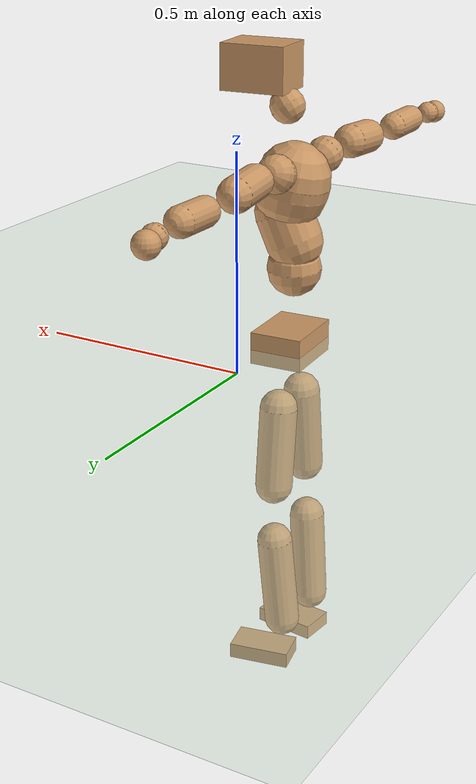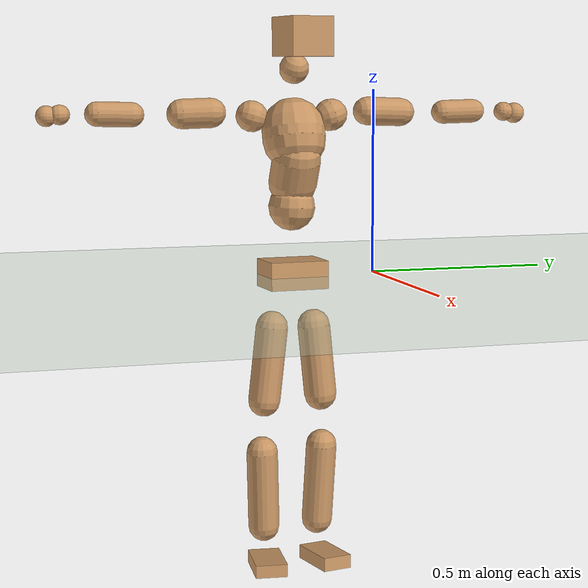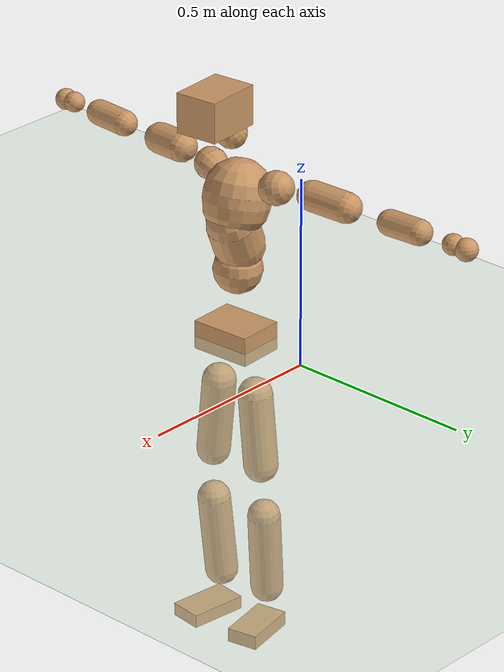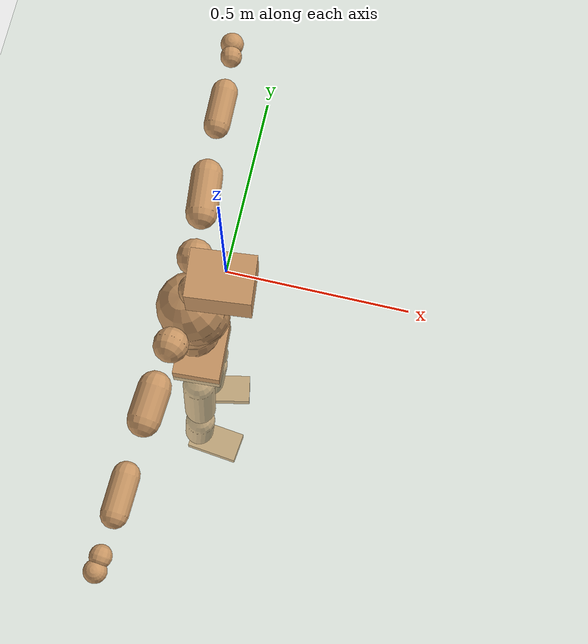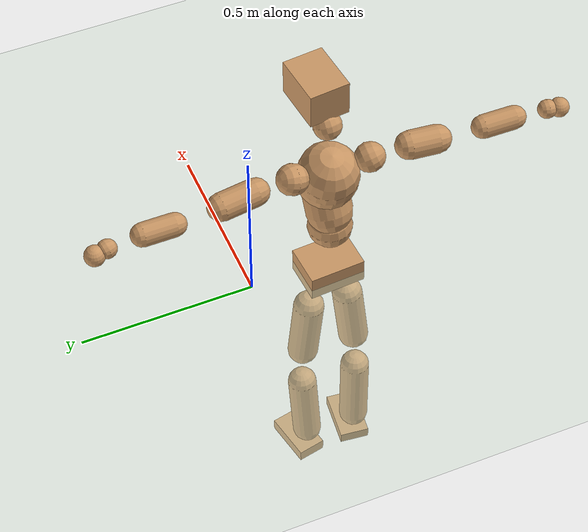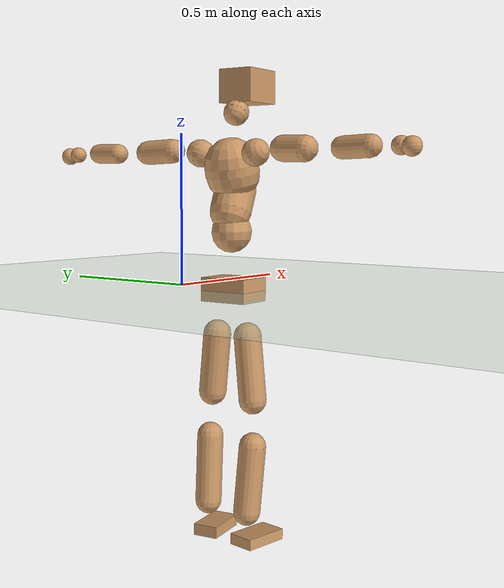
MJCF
<mujoco model="humanoid">
  <compiler coordinate="local" angle="radian"/>
  <default>
    <joint damping="0.0" armature="0.01" stiffness="0.0" limited="true"/>
    <geom conaffinity="1" condim="3" contype="7" margin="0.001" rgba="0.8 0.6 .4 1"/>
  </default>
  <asset>
    <texture type="skybox" builtin="gradient" rgb1=".4 .5 .6" rgb2="0 0 0" width="100" height="100"/>
    <texture builtin="flat" height="1278" mark="cross" markrgb="1 1 1" name="texgeom" random="0.01" rgb1="0.8 0.6 0.4" rgb2="0.8 0.6 0.4" type="cube" width="127"/>
    <texture builtin="checker" height="100" name="texplane" rgb1="0 0 0" rgb2="0.8 0.8 0.8" type="2d" width="100"/>
    <material name="MatPlane" reflectance="0.5" shininess="1" specular="1" texrepeat="60 60" texture="texplane"/>
    <material name="geom" texture="texgeom" texuniform="true"/>
  </asset>
  <worldbody>
    <light cutoff="100" diffuse="1 1 1" dir="-0 0 -1.3" directional="true" exponent="1" pos="0 0 1.3" specular=".1 .1 .1"/>
    <geom conaffinity="1" condim="3" name="floor" pos="0 0 0" rgba="0.8 0.9 0.8 1" size="100 100 .2" type="plane" material="MatPlane"/>
    <body name="Pelvis" pos="-0.0053 -0.2268 0.0142">
      <freejoint name="Pelvis"/>
      <geom type="box" contype="1" conaffinity="1" density="5359.374787" pos="-0.0054 -0.0003 -0.0117" size="0.0625 0.0815 0.0382" quat="0.9996 0.0000 0.0000 0.0271" name="Pelvis"/>
      <body name="L_Hip" pos="-0.0106 0.0538 -0.0844">
        <joint name="L_Hip_x" type="hinge" pos="0 0 0" axis="1 0 0" stiffness="1600" damping="160" armature="0.02" range="-180.0000 180.0000"/>
        <joint name="L_Hip_y" type="hinge" pos="0 0 0" axis="0 1 0" stiffness="1600" damping="160" armature="0.02" range="-180.0000 180.0000"/>
        <joint name="L_Hip_z" type="hinge" pos="0 0 0" axis="0 0 1" stiffness="1600" damping="160" armature="0.02" range="-180.0000 180.0000"/>
        <geom type="capsule" contype="1" conaffinity="1" density="2040.816327" size="0.0447" fromto="0.0001 0.0073 -0.0744 0.0004 0.0265 -0.2684" name="L_Hip"/>
        <body name="L_Knee" pos="0.0005 0.0338 -0.3427">
          <joint name="L_Knee_x" type="hinge" pos="0 0 0" axis="1 0 0" stiffness="1600" damping="160" armature="0.02" range="-180.0000 180.0000"/>
          <joint name="L_Knee_y" type="hinge" pos="0 0 0" axis="0 1 0" stiffness="1600" damping="160" armature="0.02" range="-180.0000 180.0000"/>
          <joint name="L_Knee_z" type="hinge" pos="0 0 0" axis="0 0 1" stiffness="1600" damping="160" armature="0.02" range="-180.0000 180.0000"/>
          <geom type="capsule" contype="1" conaffinity="1" density="1234.567901" size="0.0425" fromto="-0.0063 -0.0023 -0.0722 -0.0252 -0.0094 -0.2894" name="L_Knee"/>
          <body name="L_Ankle" pos="-0.0314 -0.0117 -0.3616">
            <joint name="L_Ankle_x" type="hinge" pos="0 0 0" axis="1 0 0" stiffness="1600" damping="160" armature="0.02" range="-180.0000 180.0000"/>
            <joint name="L_Ankle_y" type="hinge" pos="0 0 0" axis="0 1 0" stiffness="1600" damping="160" armature="0.02" range="-180.0000 180.0000"/>
            <joint name="L_Ankle_z" type="hinge" pos="0 0 0" axis="0 0 1" stiffness="1600" damping="160" armature="0.02" range="-180.0000 180.0000"/>
            <geom type="box" contype="1" conaffinity="1" density="999.999956" pos="0.0538 0.0107 -0.0265" size="0.0738 0.0413 0.0189" quat="0.9952 0.0000 0.0000 0.0983" name="L_Ankle"/>
            <body name="L_Toe" pos="0.1076 0.0215 -0.0531">
              <joint name="L_Toe_x" type="hinge" pos="0 0 0" axis="1 0 0" stiffness="1000" damping="100" armature="0.02" range="-180.0000 180.0000"/>
              <joint name="L_Toe_y" type="hinge" pos="0 0 0" axis="0 1 0" stiffness="1000" damping="100" armature="0.02" range="-180.0000 180.0000"/>
              <joint name="L_Toe_z" type="hinge" pos="0 0 0" axis="0 0 1" stiffness="1000" damping="100" armature="0.02" range="-180.0000 180.0000"/>
              <geom type="box" contype="1" conaffinity="1" density="7966021.697165" pos="0.0000 0.0000 0.0281" size="0.0008 0.0021 0.001" quat="0.9944 0.0000 0.0000 0.1053" name="L_Toe"/>
            </body>
          </body>
        </body>
      </body>
      <body name="R_Hip" pos="-0.0066 -0.0516 -0.0842">
        <joint name="R_Hip_x" type="hinge" pos="0 0 0" axis="1 0 0" stiffness="1600" damping="160" armature="0.02" range="-180.0000 180.0000"/>
        <joint name="R_Hip_y" type="hinge" pos="0 0 0" axis="0 1 0" stiffness="1600" damping="160" armature="0.02" range="-180.0000 180.0000"/>
        <joint name="R_Hip_z" type="hinge" pos="0 0 0" axis="0 0 1" stiffness="1600" damping="160" armature="0.02" range="-180.0000 180.0000"/>
        <geom type="capsule" contype="1" conaffinity="1" density="2040.816327" size="0.0441" fromto="-0.0004 -0.0081 -0.0736 -0.0014 -0.0304 -0.2778" name="R_Hip"/>
        <body name="R_Knee" pos="-0.0017 -0.0385 -0.3514">
          <joint name="R_Knee_x" type="hinge" pos="0 0 0" axis="1 0 0" stiffness="1600" damping="160" armature="0.02" range="-180.0000 180.0000"/>
          <joint name="R_Knee_y" type="hinge" pos="0 0 0" axis="0 1 0" stiffness="1600" damping="160" armature="0.02" range="-180.0000 180.0000"/>
          <joint name="R_Knee_z" type="hinge" pos="0 0 0" axis="0 0 1" stiffness="1600" damping="160" armature="0.02" range="-180.0000 180.0000"/>
          <geom type="capsule" contype="1" conaffinity="1" density="1234.567901" size="0.0431" fromto="-0.0058 0.0030 -0.0728 -0.0231 0.0119 -0.2883" name="R_Knee"/>
          <body name="R_Ankle" pos="-0.029 0.0149 -0.3612">
            <joint name="R_Ankle_x" type="hinge" pos="0 0 0" axis="1 0 0" stiffness="1600" damping="160" armature="0.02" range="-180.0000 180.0000"/>
            <joint name="R_Ankle_y" type="hinge" pos="0 0 0" axis="0 1 0" stiffness="1600" damping="160" armature="0.02" range="-180.0000 180.0000"/>
            <joint name="R_Ankle_z" type="hinge" pos="0 0 0" axis="0 0 1" stiffness="1600" damping="160" armature="0.02" range="-180.0000 180.0000"/>
            <geom type="box" contype="1" conaffinity="1" density="999.99993" pos="0.0553 -0.0064 -0.0212" size="0.0766 0.044 0.0175" quat="0.9983 0.0000 0.0000 -0.0577" name="R_Ankle"/>
            <body name="R_Toe" pos="0.1105 -0.0128 -0.0424">
              <joint name="R_Toe_x" type="hinge" pos="0 0 0" axis="1 0 0" stiffness="1000" damping="100" armature="0.02" range="-180.0000 180.0000"/>
              <joint name="R_Toe_y" type="hinge" pos="0 0 0" axis="0 1 0" stiffness="1000" damping="100" armature="0.02" range="-180.0000 180.0000"/>
              <joint name="R_Toe_z" type="hinge" pos="0 0 0" axis="0 0 1" stiffness="1000" damping="100" armature="0.02" range="-180.0000 180.0000"/>
              <geom type="box" contype="1" conaffinity="1" density="8304630.065237" pos="0.0000 0.0000 0.0251" size="0.0008 0.0021 0.0011" quat="0.9989 0.0000 0.0000 -0.0479" name="R_Toe"/>
            </body>
          </body>
        </body>
      </body>
      <body name="Torso" pos="-0.015 -0.0039 0.0983">
        <joint name="Torso_x" type="hinge" pos="0 0 0" axis="1 0 0" stiffness="2000" damping="200" armature="0.02" range="-180.0000 180.0000"/>
        <joint name="Torso_y" type="hinge" pos="0 0 0" axis="0 1 0" stiffness="2000" damping="200" armature="0.02" range="-180.0000 180.0000"/>
        <joint name="Torso_z" type="hinge" pos="0 0 0" axis="0 0 1" stiffness="2000" damping="200" armature="0.02" range="-180.0000 180.0000"/>
        <geom type="capsule" contype="1" conaffinity="1" density="2040.816327" size="0.0638" fromto="0.0012 0.0036 0.0708 0.0012 0.0037 0.0728" name="Torso"/>
        <body name="Spine" pos="0.0024 0.0072 0.1435">
          <joint name="Spine_x" type="hinge" pos="0 0 0" axis="1 0 0" stiffness="2000" damping="200" armature="0.02" range="-180.0000 180.0000"/>
          <joint name="Spine_y" type="hinge" pos="0 0 0" axis="0 1 0" stiffness="2000" damping="200" armature="0.02" range="-180.0000 180.0000"/>
          <joint name="Spine_z" type="hinge" pos="0 0 0" axis="0 0 1" stiffness="2000" damping="200" armature="0.02" range="-180.0000 180.0000"/>
          <geom type="capsule" contype="1" conaffinity="1" density="2040.816327" size="0.0661" fromto="0.0258 0.0026 0.0608 -0.0029 -0.0003 -0.0068" name="Spine"/>
          <body name="Chest" pos="0.0229 0.0023 0.054">
            <joint name="Chest_x" type="hinge" pos="0 0 0" axis="1 0 0" stiffness="2000" damping="200" armature="0.02" range="-180.0000 180.0000"/>
            <joint name="Chest_y" type="hinge" pos="0 0 0" axis="0 1 0" stiffness="2000" damping="200" armature="0.02" range="-180.0000 180.0000"/>
            <joint name="Chest_z" type="hinge" pos="0 0 0" axis="0 0 1" stiffness="2000" damping="200" armature="0.02" range="-180.0000 180.0000"/>
            <geom type="capsule" contype="1" conaffinity="1" density="2040.816327" size="0.0862" fromto="-0.0209 -0.0020 0.0836 -0.0142 -0.0014 0.0571" name="Chest"/>
            <body name="Neck" pos="-0.0325 -0.0073 0.2049">
              <joint name="Neck_x" type="hinge" pos="0 0 0" axis="1 0 0" stiffness="1000" damping="100" armature="0.02" range="-180.0000 180.0000"/>
              <joint name="Neck_y" type="hinge" pos="0 0 0" axis="0 1 0" stiffness="1000" damping="100" armature="0.02" range="-180.0000 180.0000"/>
              <joint name="Neck_z" type="hinge" pos="0 0 0" axis="0 0 1" stiffness="1000" damping="100" armature="0.02" range="-180.0000 180.0000"/>
              <geom type="capsule" contype="1" conaffinity="1" density="1000" size="0.04" fromto="0.0303 0.0020 0.0405 0.0315 0.0021 0.0421" name="Neck"/>
              <body name="Head" pos="0.0617 0.0041 0.0826">
                <joint name="Head_x" type="hinge" pos="0 0 0" axis="1 0 0" stiffness="1000" damping="100" armature="0.02" range="-180.0000 180.0000"/>
                <joint name="Head_y" type="hinge" pos="0 0 0" axis="0 1 0" stiffness="1000" damping="100" armature="0.02" range="-180.0000 180.0000"/>
                <joint name="Head_z" type="hinge" pos="0 0 0" axis="0 0 1" stiffness="1000" damping="100" armature="0.02" range="-180.0000 180.0000"/>
                <geom type="box" contype="1" conaffinity="1" density="2249.999868" pos="0.0319 0.0031 0.0423" size="0.0752 0.0574 0.0521" quat="0.9988 0.0000 0.0000 0.0480" name="Head"/>
              </body>
            </body>
            <body name="L_Thorax" pos="-0.035 0.0692 0.1098">
              <joint name="L_Thorax_x" type="hinge" pos="0 0 0" axis="1 0 0" stiffness="1000" damping="100" armature="0.02" range="-180.0000 180.0000"/>
              <joint name="L_Thorax_y" type="hinge" pos="0 0 0" axis="0 1 0" stiffness="1000" damping="100" armature="0.02" range="-180.0000 180.0000"/>
              <joint name="L_Thorax_z" type="hinge" pos="0 0 0" axis="0 0 1" stiffness="1000" damping="100" armature="0.02" range="-180.0000 180.0000"/>
              <geom type="capsule" contype="1" conaffinity="1" density="1000" size="0.0439" fromto="-0.0035 0.0419 0.0124 -0.0032 0.0386 0.0114" name="L_Thorax"/>
              <body name="L_Shoulder" pos="-0.0067 0.0805 0.0238">
                <joint name="L_Shoulder_x" type="hinge" pos="0 0 0" axis="1 0 0" stiffness="1000" damping="100" armature="0.02" range="-720.0000 720.0000"/>
                <joint name="L_Shoulder_y" type="hinge" pos="0 0 0" axis="0 1 0" stiffness="1000" damping="100" armature="0.02" range="-720.0000 720.0000"/>
                <joint name="L_Shoulder_z" type="hinge" pos="0 0 0" axis="0 0 1" stiffness="1000" damping="100" armature="0.02" range="-720.0000 720.0000"/>
                <geom type="capsule" contype="1" conaffinity="1" density="1000" size="0.039" fromto="-0.0071 0.0685 -0.0026 -0.0175 0.1691 -0.0064" name="L_Shoulder"/>
                <body name="L_Elbow" pos="-0.0246 0.2377 -0.009">
                  <joint name="L_Elbow_x" type="hinge" pos="0 0 0" axis="1 0 0" stiffness="1000" damping="100" armature="0.02" range="-720.0000 720.0000"/>
                  <joint name="L_Elbow_y" type="hinge" pos="0 0 0" axis="0 1 0" stiffness="1000" damping="100" armature="0.02" range="-720.0000 720.0000"/>
                  <joint name="L_Elbow_z" type="hinge" pos="0 0 0" axis="0 0 1" stiffness="1000" damping="100" armature="0.02" range="-720.0000 720.0000"/>
                  <geom type="capsule" contype="1" conaffinity="1" density="1000" size="0.0327" fromto="-0.0011 0.0627 0.0017 -0.0027 0.1527 0.0040" name="L_Elbow"/>
                  <body name="L_Wrist" pos="-0.0038 0.2154 0.0057">
                    <joint name="L_Wrist_x" type="hinge" pos="0 0 0" axis="1 0 0" stiffness="600" damping="60" armature="0.02" range="-180.0000 180.0000"/>
                    <joint name="L_Wrist_y" type="hinge" pos="0 0 0" axis="0 1 0" stiffness="600" damping="60" armature="0.02" range="-180.0000 180.0000"/>
                    <joint name="L_Wrist_z" type="hinge" pos="0 0 0" axis="0 0 1" stiffness="600" damping="60" armature="0.02" range="-180.0000 180.0000"/>
                    <geom type="capsule" contype="1" conaffinity="1" density="1000" size="0.0267" fromto="-0.0058 0.0347 -0.0042 -0.0061 0.0366 -0.0044" name="L_Wrist"/>
                    <body name="L_Hand" pos="-0.0119 0.0713 -0.0086">
                      <joint name="L_Hand_x" type="hinge" pos="0 0 0" axis="1 0 0" stiffness="600" damping="60" armature="0.02" range="-180.0000 180.0000"/>
                      <joint name="L_Hand_y" type="hinge" pos="0 0 0" axis="0 1 0" stiffness="600" damping="60" armature="0.02" range="-180.0000 180.0000"/>
                      <joint name="L_Hand_z" type="hinge" pos="0 0 0" axis="0 0 1" stiffness="600" damping="60" armature="0.02" range="-180.0000 180.0000"/>
                      <geom type="sphere" contype="1" conaffinity="1" density="1000" size="0.0289" pos="0.0000 0.0000 0.0000" name="L_Hand"/>
                    </body>
                  </body>
                </body>
              </body>
            </body>
            <body name="R_Thorax" pos="-0.0377 -0.0721 0.1075">
              <joint name="R_Thorax_x" type="hinge" pos="0 0 0" axis="1 0 0" stiffness="1000" damping="100" armature="0.02" range="-180.0000 180.0000"/>
              <joint name="R_Thorax_y" type="hinge" pos="0 0 0" axis="0 1 0" stiffness="1000" damping="100" armature="0.02" range="-180.0000 180.0000"/>
              <joint name="R_Thorax_z" type="hinge" pos="0 0 0" axis="0 0 1" stiffness="1000" damping="100" armature="0.02" range="-180.0000 180.0000"/>
              <geom type="capsule" contype="1" conaffinity="1" density="1000" size="0.0424" fromto="-0.0046 -0.0391 0.0118 -0.0048 -0.0410 0.0124" name="R_Thorax"/>
              <body name="R_Shoulder" pos="-0.0094 -0.0801 0.0241">
                <joint name="R_Shoulder_x" type="hinge" pos="0 0 0" axis="1 0 0" stiffness="1000" damping="100" armature="0.02" range="-720.0000 720.0000"/>
                <joint name="R_Shoulder_y" type="hinge" pos="0 0 0" axis="0 1 0" stiffness="1000" damping="100" armature="0.02" range="-720.0000 720.0000"/>
                <joint name="R_Shoulder_z" type="hinge" pos="0 0 0" axis="0 0 1" stiffness="1000" damping="100" armature="0.02" range="-720.0000 720.0000"/>
                <geom type="capsule" contype="1" conaffinity="1" density="1000" size="0.0401" fromto="-0.0052 -0.0699 -0.0024 -0.0111 -0.1492 -0.0051" name="R_Shoulder"/>
                <body name="R_Elbow" pos="-0.0163 -0.2191 -0.0075">
                  <joint name="R_Elbow_x" type="hinge" pos="0 0 0" axis="1 0 0" stiffness="1000" damping="100" armature="0.02" range="-720.0000 720.0000"/>
                  <joint name="R_Elbow_y" type="hinge" pos="0 0 0" axis="0 1 0" stiffness="1000" damping="100" armature="0.02" range="-720.0000 720.0000"/>
                  <joint name="R_Elbow_z" type="hinge" pos="0 0 0" axis="0 0 1" stiffness="1000" damping="100" armature="0.02" range="-720.0000 720.0000"/>
                  <geom type="capsule" contype="1" conaffinity="1" density="1000" size="0.0331" fromto="-0.0021 -0.0630 0.0015 -0.0053 -0.1549 0.0038" name="R_Elbow"/>
                  <body name="R_Wrist" pos="-0.0074 -0.2179 0.0054">
                    <joint name="R_Wrist_x" type="hinge" pos="0 0 0" axis="1 0 0" stiffness="600" damping="60" armature="0.02" range="-180.0000 180.0000"/>
                    <joint name="R_Wrist_y" type="hinge" pos="0 0 0" axis="0 1 0" stiffness="600" damping="60" armature="0.02" range="-180.0000 180.0000"/>
                    <joint name="R_Wrist_z" type="hinge" pos="0 0 0" axis="0 0 1" stiffness="600" damping="60" armature="0.02" range="-180.0000 180.0000"/>
                    <geom type="capsule" contype="1" conaffinity="1" density="1000" size="0.0267" fromto="-0.0040 -0.0334 -0.0030 -0.0042 -0.0353 -0.0031" name="R_Wrist"/>
                    <body name="R_Hand" pos="-0.0082 -0.0687 -0.0061">
                      <joint name="R_Hand_x" type="hinge" pos="0 0 0" axis="1 0 0" stiffness="600" damping="60" armature="0.02" range="-180.0000 180.0000"/>
                      <joint name="R_Hand_y" type="hinge" pos="0 0 0" axis="0 1 0" stiffness="600" damping="60" armature="0.02" range="-180.0000 180.0000"/>
                      <joint name="R_Hand_z" type="hinge" pos="0 0 0" axis="0 0 1" stiffness="600" damping="60" armature="0.02" range="-180.0000 180.0000"/>
                      <geom type="sphere" contype="1" conaffinity="1" density="1000" size="0.0279" pos="0.0000 0.0000 0.0000" name="R_Hand"/>
                    </body>
                  </body>
                </body>
              </body>
            </body>
          </body>
        </body>
      </body>
    </body>
  </worldbody>
  <actuator>
    <motor name="L_Hip_x" joint="L_Hip_x" gear="500"/>
    <motor name="L_Hip_y" joint="L_Hip_y" gear="500"/>
    <motor name="L_Hip_z" joint="L_Hip_z" gear="500"/>
    <motor name="L_Knee_x" joint="L_Knee_x" gear="500"/>
    <motor name="L_Knee_y" joint="L_Knee_y" gear="500"/>
    <motor name="L_Knee_z" joint="L_Knee_z" gear="500"/>
    <motor name="L_Ankle_x" joint="L_Ankle_x" gear="500"/>
    <motor name="L_Ankle_y" joint="L_Ankle_y" gear="500"/>
    <motor name="L_Ankle_z" joint="L_Ankle_z" gear="500"/>
    <motor name="L_Toe_x" joint="L_Toe_x" gear="500"/>
    <motor name="L_Toe_y" joint="L_Toe_y" gear="500"/>
    <motor name="L_Toe_z" joint="L_Toe_z" gear="500"/>
    <motor name="R_Hip_x" joint="R_Hip_x" gear="500"/>
    <motor name="R_Hip_y" joint="R_Hip_y" gear="500"/>
    <motor name="R_Hip_z" joint="R_Hip_z" gear="500"/>
    <motor name="R_Knee_x" joint="R_Knee_x" gear="500"/>
    <motor name="R_Knee_y" joint="R_Knee_y" gear="500"/>
    <motor name="R_Knee_z" joint="R_Knee_z" gear="500"/>
    <motor name="R_Ankle_x" joint="R_Ankle_x" gear="500"/>
    <motor name="R_Ankle_y" joint="R_Ankle_y" gear="500"/>
    <motor name="R_Ankle_z" joint="R_Ankle_z" gear="500"/>
    <motor name="R_Toe_x" joint="R_Toe_x" gear="500"/>
    <motor name="R_Toe_y" joint="R_Toe_y" gear="500"/>
    <motor name="R_Toe_z" joint="R_Toe_z" gear="500"/>
    <motor name="Torso_x" joint="Torso_x" gear="500"/>
    <motor name="Torso_y" joint="Torso_y" gear="500"/>
    <motor name="Torso_z" joint="Torso_z" gear="500"/>
    <motor name="Spine_x" joint="Spine_x" gear="500"/>
    <motor name="Spine_y" joint="Spine_y" gear="500"/>
    <motor name="Spine_z" joint="Spine_z" gear="500"/>
    <motor name="Chest_x" joint="Chest_x" gear="500"/>
    <motor name="Chest_y" joint="Chest_y" gear="500"/>
    <motor name="Chest_z" joint="Chest_z" gear="500"/>
    <motor name="Neck_x" joint="Neck_x" gear="500"/>
    <motor name="Neck_y" joint="Neck_y" gear="500"/>
    <motor name="Neck_z" joint="Neck_z" gear="500"/>
    <motor name="Head_x" joint="Head_x" gear="500"/>
    <motor name="Head_y" joint="Head_y" gear="500"/>
    <motor name="Head_z" joint="Head_z" gear="500"/>
    <motor name="L_Thorax_x" joint="L_Thorax_x" gear="500"/>
    <motor name="L_Thorax_y" joint="L_Thorax_y" gear="500"/>
    <motor name="L_Thorax_z" joint="L_Thorax_z" gear="500"/>
    <motor name="L_Shoulder_x" joint="L_Shoulder_x" gear="500"/>
    <motor name="L_Shoulder_y" joint="L_Shoulder_y" gear="500"/>
    <motor name="L_Shoulder_z" joint="L_Shoulder_z" gear="500"/>
    <motor name="L_Elbow_x" joint="L_Elbow_x" gear="500"/>
    <motor name="L_Elbow_y" joint="L_Elbow_y" gear="500"/>
    <motor name="L_Elbow_z" joint="L_Elbow_z" gear="500"/>
    <motor name="L_Wrist_x" joint="L_Wrist_x" gear="500"/>
    <motor name="L_Wrist_y" joint="L_Wrist_y" gear="500"/>
    <motor name="L_Wrist_z" joint="L_Wrist_z" gear="500"/>
    <motor name="L_Hand_x" joint="L_Hand_x" gear="500"/>
    <motor name="L_Hand_y" joint="L_Hand_y" gear="500"/>
    <motor name="L_Hand_z" joint="L_Hand_z" gear="500"/>
    <motor name="R_Thorax_x" joint="R_Thorax_x" gear="500"/>
    <motor name="R_Thorax_y" joint="R_Thorax_y" gear="500"/>
    <motor name="R_Thorax_z" joint="R_Thorax_z" gear="500"/>
    <motor name="R_Shoulder_x" joint="R_Shoulder_x" gear="500"/>
    <motor name="R_Shoulder_y" joint="R_Shoulder_y" gear="500"/>
    <motor name="R_Shoulder_z" joint="R_Shoulder_z" gear="500"/>
    <motor name="R_Elbow_x" joint="R_Elbow_x" gear="500"/>
    <motor name="R_Elbow_y" joint="R_Elbow_y" gear="500"/>
    <motor name="R_Elbow_z" joint="R_Elbow_z" gear="500"/>
    <motor name="R_Wrist_x" joint="R_Wrist_x" gear="500"/>
    <motor name="R_Wrist_y" joint="R_Wrist_y" gear="500"/>
    <motor name="R_Wrist_z" joint="R_Wrist_z" gear="500"/>
    <motor name="R_Hand_x" joint="R_Hand_x" gear="500"/>
    <motor name="R_Hand_y" joint="R_Hand_y" gear="500"/>
    <motor name="R_Hand_z" joint="R_Hand_z" gear="500"/>
  </actuator>
  <contact>
    <exclude body1="Torso" body2="Chest"/>
    <exclude body1="Head" body2="Chest"/>
    <exclude body1="R_Knee" body2="R_Toe"/>
    <exclude body1="R_Knee" body2="L_Ankle"/>
    <exclude body1="R_Knee" body2="L_Toe"/>
    <exclude body1="L_Knee" body2="L_Toe"/>
    <exclude body1="L_Knee" body2="R_Ankle"/>
    <exclude body1="L_Knee" body2="R_Toe"/>
    <exclude body1="L_Shoulder" body2="Chest"/>
    <exclude body1="R_Shoulder" body2="Chest"/>
  </contact>
  <sensor/>
  <size njmax="700" nconmax="700"/>
</mujoco>
